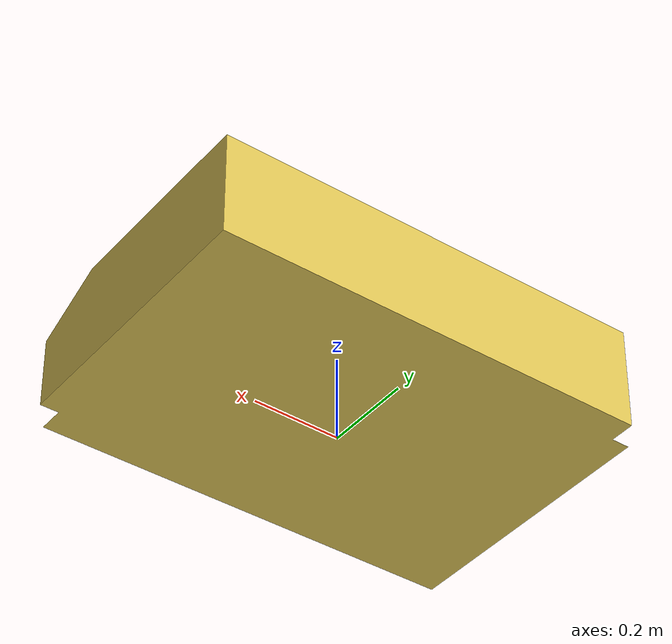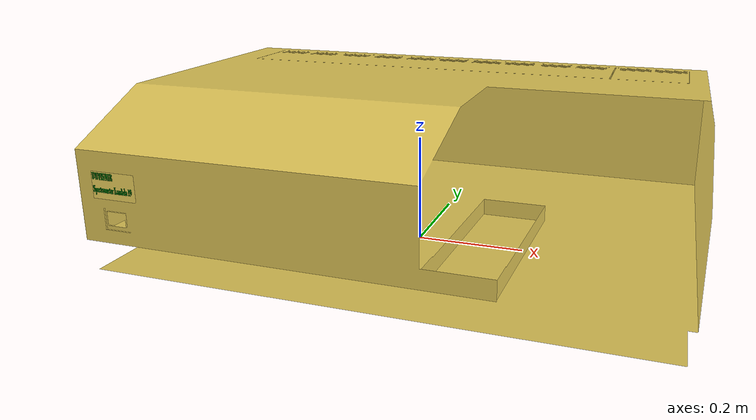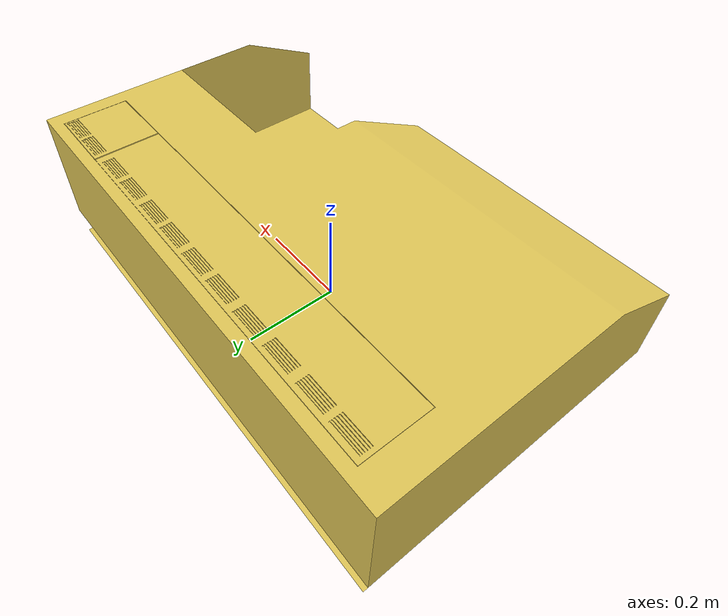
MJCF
<!-- Generated by tools/convert_instrument.py from 3d-model.obj; size 1.000 x 0.652 x 0.646 m -->
<mujoco model="uv_vis_nir">
  <compiler meshdir="."/>
  <asset>
    <mesh name="uv_vis_nir_00" file="uv_vis_nir/part_00.obj" inertia="shell"/>
    <mesh name="uv_vis_nir_01" file="uv_vis_nir/part_01.obj" inertia="shell"/>
  </asset>
  <worldbody>
    <body name="uv_vis_nir">
      <geom type="mesh" mesh="uv_vis_nir_00" rgba="0.024 0.525 0.024 1.000" contype="0" conaffinity="0" group="1"/>  <!-- wire_006134006 -->
      <geom type="mesh" mesh="uv_vis_nir_01" rgba="0.878 0.776 0.341 1.000" contype="0" conaffinity="0" group="1"/>  <!-- wire_224198087 -->
      <geom name="uv_vis_nir_collision" type="box" size="0.5000 0.3258 0.3230" pos="0 0 0.3230" group="3" rgba=".5 .5 .5 .3"/>
    </body>
  </worldbody>
</mujoco>
